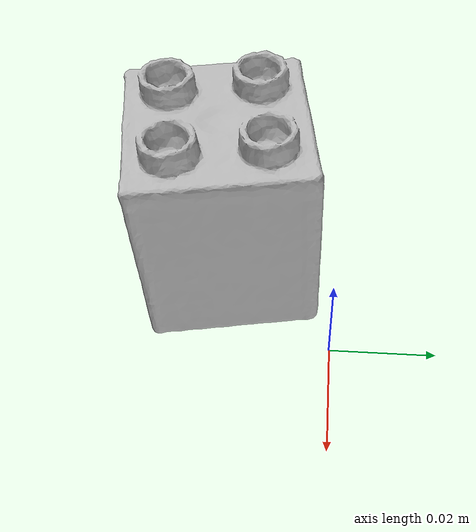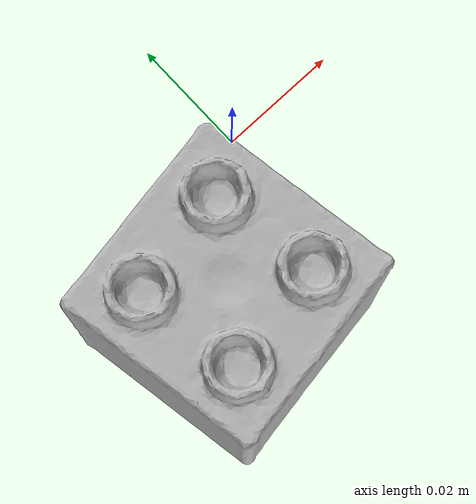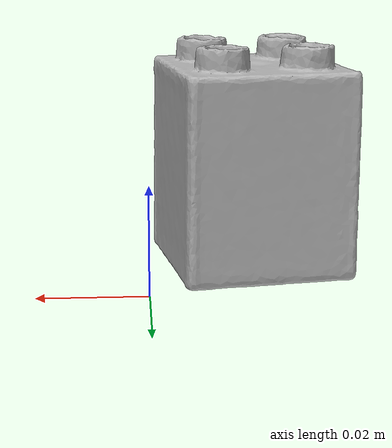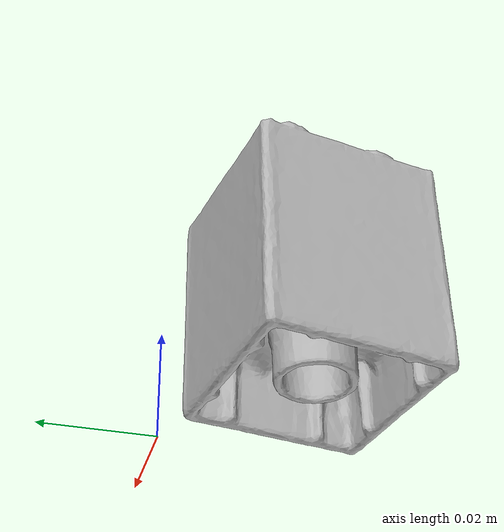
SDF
<?xml version='1.0'?>
<sdf version="1.4">
  <model name="b_lego_duplo">
    <static>false</static>
    <link name="link">
      <inertial>
        <pose>-0.020151953995170956 -0.020701169043825223 0.023741940675427498 -0.2175679828423229 0.19777913553708576 -1.3573008139395737</pose>
        <mass>2.9576499279607837e-05</mass>
        <inertia>
          <ixx>5.471010112387626e-09</ixx>
          <ixy>8.415073593986997e-26</ixy>
          <ixz>-1.176537346065375e-24</ixz>
          <iyy>5.454430145050907e-09</iyy>
          <iyz>4.082618381978249e-26</iyz>
          <izz>5.3803675287085445e-09</izz>
        </inertia>
      </inertial>
      <collision name="collision">
        <geometry>
          <mesh>
            <!-- Use a downsampled mesh for collisions -->
            <uri>model://073-b_lego_duplo/google_16k/073-b_lego_duplo.obj</uri>
            </mesh>
        </geometry>
        <surface>
          <friction>
            <ode>
              <mu>0.9</mu>
              <mu2>0.9</mu2>
            </ode>
          </friction>
          <contact>
            <ode>
              <kp>1000000000000.0</kp>
              <kd>1</kd>
              <min_depth>0.0001</min_depth>
              <max_vel>0.01</max_vel>
            </ode>
          </contact>
          <bounce>
            <restitution_coefficient>0.1</restitution_coefficient>
            <threshold>1000.0</threshold>
          </bounce>
        </surface>
      </collision>
      <visual name="visual">
        <geometry>
          <mesh>
            <uri>model://073-b_lego_duplo/google_16k/073-b_lego_duplo.dae</uri>
            </mesh>
        </geometry>
      </visual>
    </link>
  </model>
</sdf>
